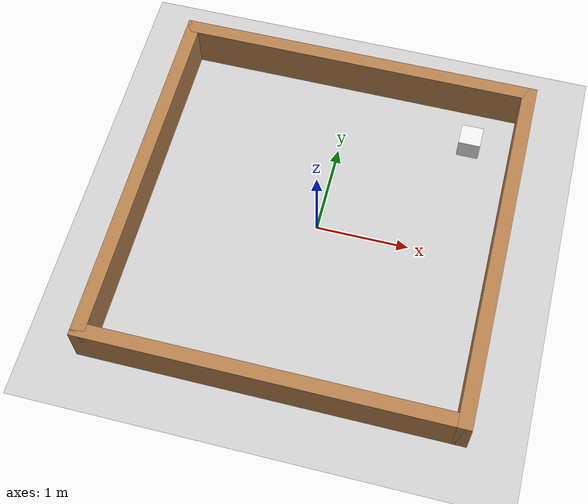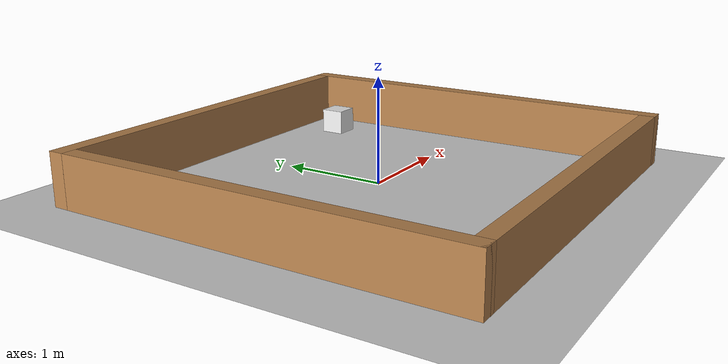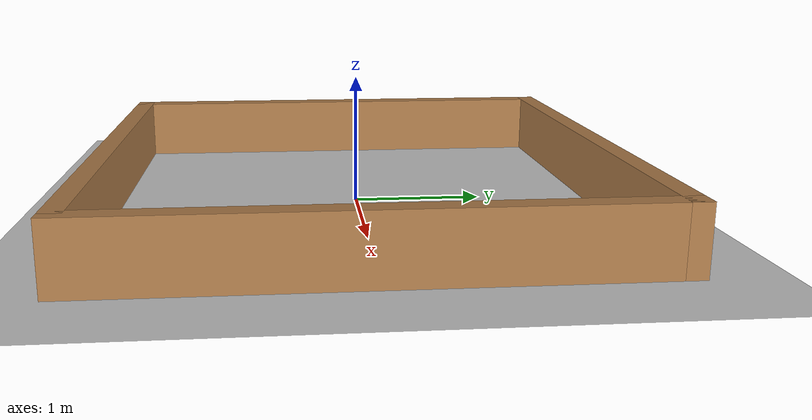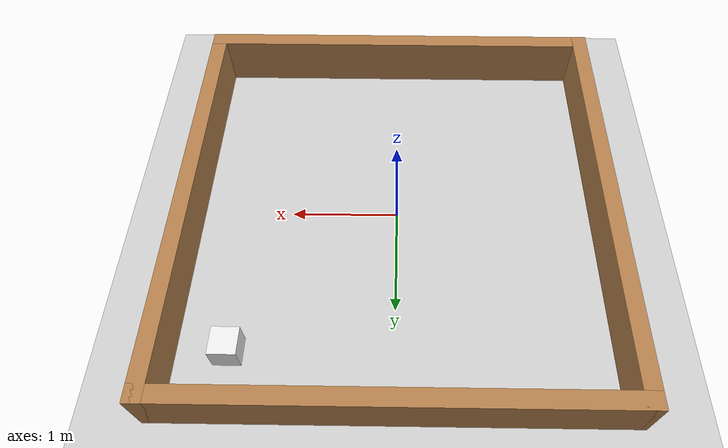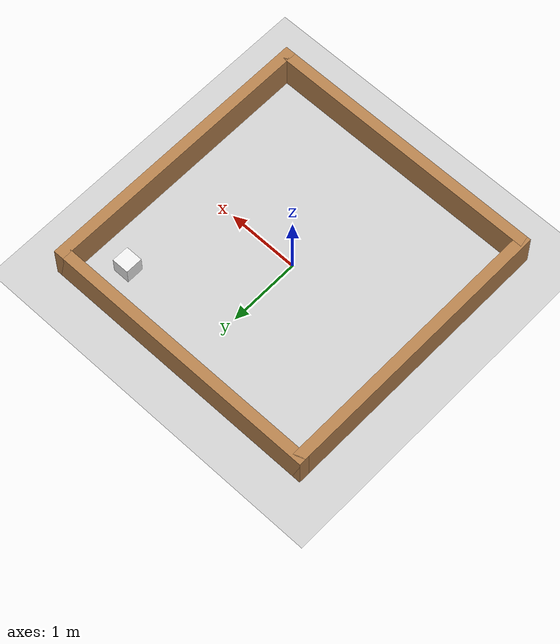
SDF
<sdf version='1.4'>
  <world name='default'>
    <!-- A global light source -->
    <include>
      <uri>model://sun</uri>
    </include>

    <!-- A ground plane -->
    <include>
      <uri>model://ground_plane</uri>
    </include>

    <physics type="ode">
      <real_time_update_rate>1000.0</real_time_update_rate>
      <max_step_size>0.001</max_step_size>
      <real_time_factor>1</real_time_factor>
      <ode>
        <solver>
          <type>quick</type>
          <iters>150</iters>
          <precon_iters>0</precon_iters>
          <sor>1.400000</sor>
          <use_dynamic_moi_rescaling>1</use_dynamic_moi_rescaling>
        </solver>
        <constraints>
          <cfm>0.00001</cfm>
          <erp>0.2</erp>
          <contact_max_correcting_vel>2000.000000</contact_max_correcting_vel>
          <contact_surface_layer>0.01000</contact_surface_layer>
        </constraints>
      </ode>
    </physics>

    <!-- Load model -->
    <include>
      <uri>model://turtlebot3_square</uri>
    </include>

    <model name='obstacle_1'>
      <pose frame=''>1.4 1.4 0.125 0 0 0</pose>
      <link name='link'>
        <inertial>
          <mass>1</mass>
          <inertia>
            <ixx>0.166667</ixx>
            <ixy>0</ixy>
            <ixz>0</ixz>
            <iyy>0.166667</iyy>
            <iyz>0</iyz>
            <izz>0.166667</izz>
          </inertia>
        </inertial>
        <collision name='collision'>
          <geometry>
            <box>
              <size>0.24 0.24 0.25</size>
            </box>
          </geometry>
          <max_contacts>10</max_contacts>
          <surface>
            <contact>
              <ode/>
            </contact>
            <bounce/>
            <friction>
              <torsional>
                <ode/>
              </torsional>
              <ode/>
            </friction>
          </surface>
        </collision>
        <visual name='visual'>
          <geometry>
            <box>
              <size>0.24 0.24 0.25</size>
            </box>
          </geometry>
          <material>
            <script>
              <name>Gazebo/White</name>
              <uri>file://media/materials/scripts/gazebo.material</uri>
            </script>
          </material>
        </visual>
        <self_collide>0</self_collide>
        <kinematic>0</kinematic>
        <gravity>1</gravity>
      </link>
    </model>

    <scene>
      <ambient>0.4 0.4 0.4 1</ambient>
      <background>0.7 0.7 0.7 1</background>
      <shadows>true</shadows>
    </scene>

    <gui fullscreen='0'>
      <camera name='user_camera'>
        <pose>0.0 0.0 17.0 0 1.5708 0</pose>
        <view_controller>orbit</view_controller>
      </camera>
    </gui>
  </world>
</sdf>

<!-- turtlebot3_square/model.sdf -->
<sdf version='1.6'>
  <model name='turtlebot3_square'>
    <pose frame=''>0 0 0 0 -0 0</pose>
    <link name='Wall_0'>
      <collision name='Wall_0_Collision'>
        <geometry>
          <box>
            <size>4 0.15 0.5</size>
          </box>
        </geometry>
        <pose frame=''>0 0 0.25 0 -0 0</pose>
      </collision>
      <visual name='Wall_0_Visual'>
        <pose frame=''>0 0 0.25 0 -0 0</pose>
        <geometry>
          <box>
            <size>4 0.15 0.5</size>
          </box>
        </geometry>
        <material>
          <script>
            <uri>file://media/materials/scripts/gazebo.material</uri>
            <name>Gazebo/Wood</name>
          </script>
          <ambient>1 1 1 1</ambient>
        </material>
      </visual>
      <pose frame=''>0 1.925 0 0 -0 0</pose>
    </link>
    <link name='Wall_2'>
      <collision name='Wall_2_Collision'>
        <geometry>
          <box>
            <size>4 0.15 0.5</size>
          </box>
        </geometry>
        <pose frame=''>0 0 0.25 0 -0 0</pose>
      </collision>
      <visual name='Wall_2_Visual'>
        <pose frame=''>0 0 0.25 0 -0 0</pose>
        <geometry>
          <box>
            <size>4 0.15 0.5</size>
          </box>
        </geometry>
        <material>
          <script>
            <uri>file://media/materials/scripts/gazebo.material</uri>
            <name>Gazebo/Wood</name>
          </script>
          <ambient>1 1 1 1</ambient>
        </material>
      </visual>
      <pose frame=''>-1.925 0 0 0 0 -1.5708</pose>
    </link>
    <link name='Wall_3'>
      <collision name='Wall_3_Collision'>
        <geometry>
          <box>
            <size>4 0.15 0.5</size>
          </box>
        </geometry>
        <pose frame=''>0 0 0.25 0 -0 0</pose>
      </collision>
      <visual name='Wall_3_Visual'>
        <pose frame=''>0 0 0.25 0 -0 0</pose>
        <geometry>
          <box>
            <size>4 0.15 0.5</size>
          </box>
        </geometry>
        <material>
          <script>
            <uri>file://media/materials/scripts/gazebo.material</uri>
            <name>Gazebo/Wood</name>
          </script>
          <ambient>1 1 1 1</ambient>
        </material>
      </visual>
      <pose frame=''>0 -1.925 0 0 -0 0</pose>
    </link>
    <link name='Wall_4'>
      <collision name='Wall_4_Collision'>
        <geometry>
          <box>
            <size>4 0.15 0.5</size>
          </box>
        </geometry>
        <pose frame=''>0 0 0.25 0 -0 0</pose>
      </collision>
      <visual name='Wall_4_Visual'>
        <pose frame=''>0 0 0.25 0 -0 0</pose>
        <geometry>
          <box>
            <size>4 0.15 0.5</size>
          </box>
        </geometry>
        <material>
          <script>
            <uri>file://media/materials/scripts/gazebo.material</uri>
            <name>Gazebo/Wood</name>
          </script>
          <ambient>1 1 1 1</ambient>
        </material>
      </visual>
      <pose frame=''>1.925 0 0 0 -0 1.5708</pose>
    </link>
    <static>1</static>
  </model>
</sdf>
